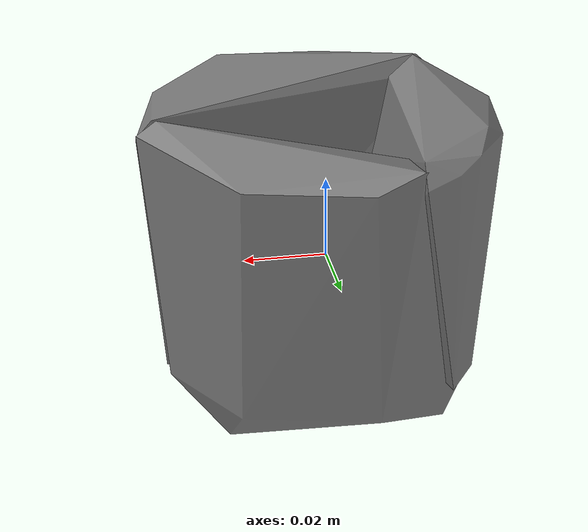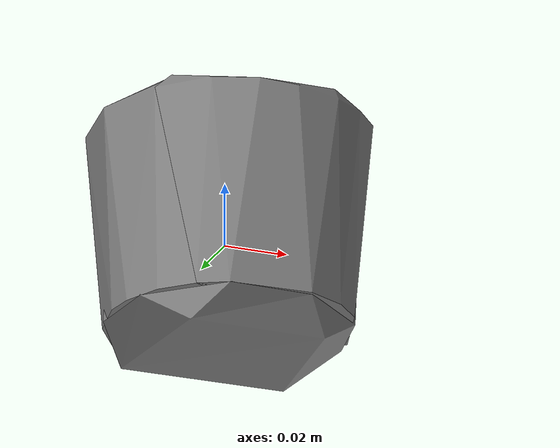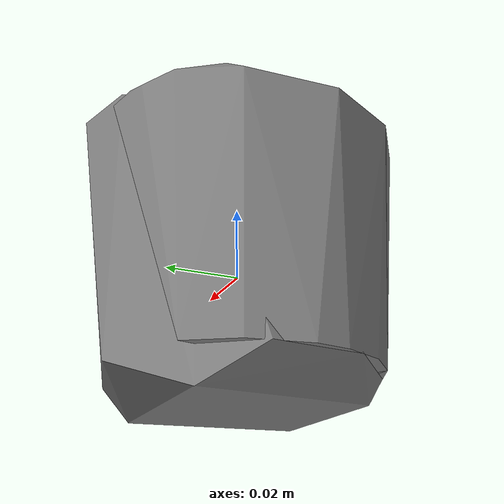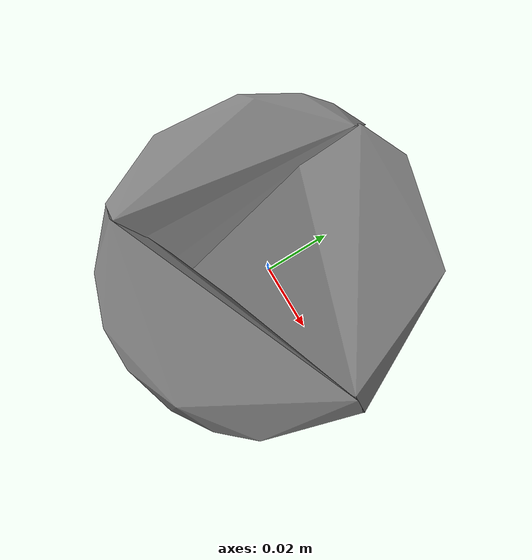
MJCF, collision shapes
<mujoco model="g_cups">
  <compiler angle="radian" />

  <asset>
    <mesh name="g_cups_visual_mesh" file="g_cups/textured.obj" />
    <mesh name="g_cups_collision_mesh_0" file="g_cups/textured_coacd_0.stl" />
    <mesh name="g_cups_collision_mesh_1" file="g_cups/textured_coacd_1.stl" />
    <mesh name="g_cups_collision_mesh_2" file="g_cups/textured_coacd_2.stl" />
    <mesh name="g_cups_collision_mesh_3" file="g_cups/textured_coacd_3.stl" />
    <texture name="g_cups_texture" type="2d" file="g_cups/texture_map.png" />
    <material name="g_cups_material" texture="g_cups_texture" />
  </asset>

  <worldbody>
    <body name="g_cups" pos="0 0 0" euler="0 0 0">
      <freejoint name="g_cups_joint" />
      <geom name="g_cups_visual_geom" type="mesh" mesh="g_cups_visual_mesh" material="g_cups_material" pos="-0.012934602057724176 -0.028094809623552288 -0.03487435287003049" euler="0 0 0" contype="0" conaffinity="0" group="0" />
      <geom name="g_cups_collision_geom_0" type="mesh" mesh="g_cups_collision_mesh_0" pos="-0.012934602057724176 -0.028094809623552288 -0.03487435287003049" euler="0 0 0" contype="1" conaffinity="1" group="3" />
      <geom name="g_cups_collision_geom_1" type="mesh" mesh="g_cups_collision_mesh_1" pos="-0.012934602057724176 -0.028094809623552288 -0.03487435287003049" euler="0 0 0" contype="1" conaffinity="1" group="3" />
      <geom name="g_cups_collision_geom_2" type="mesh" mesh="g_cups_collision_mesh_2" pos="-0.012934602057724176 -0.028094809623552288 -0.03487435287003049" euler="0 0 0" contype="1" conaffinity="1" group="3" />
      <geom name="g_cups_collision_geom_3" type="mesh" mesh="g_cups_collision_mesh_3" pos="-0.012934602057724176 -0.028094809623552288 -0.03487435287003049" euler="0 0 0" contype="1" conaffinity="1" group="3" />
      <inertial pos="0 0 0" euler="0 0 0" mass="0.028" diaginertia="0.001 0.001 0.001" />
    </body>
  </worldbody>
</mujoco>
